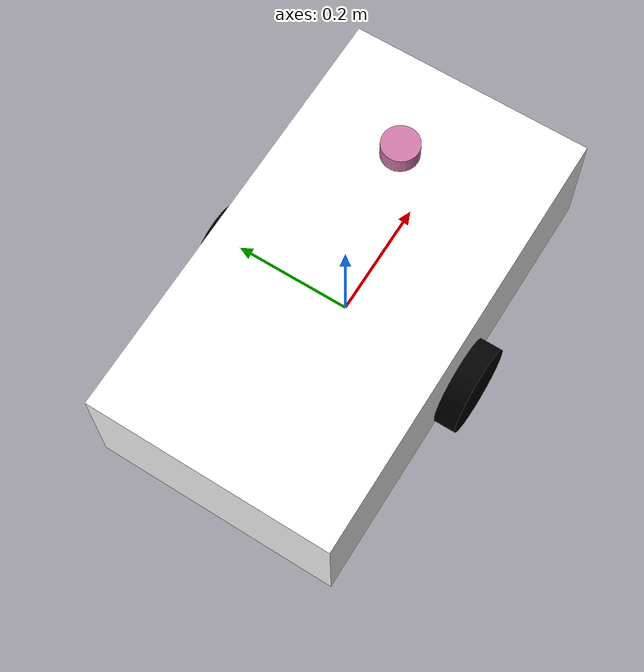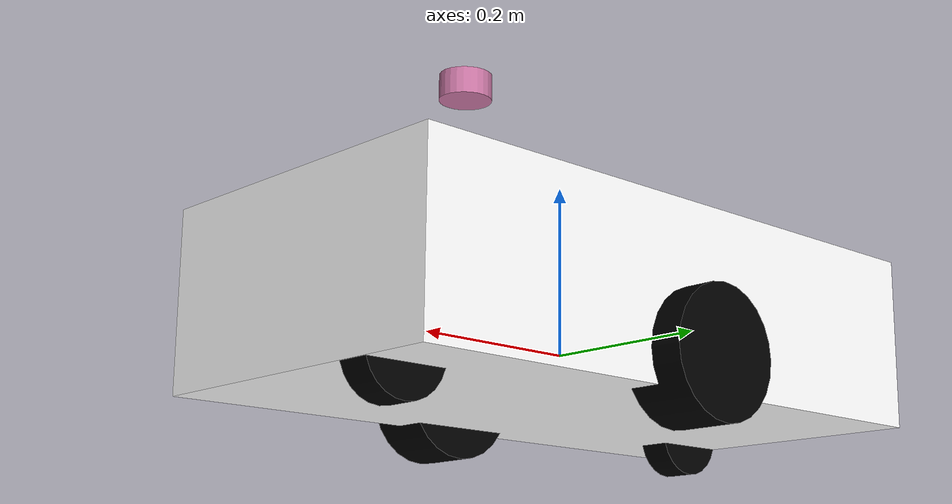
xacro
<?xml version="1.0"?>

<robot xmlns:xacro="http://www.ros.org/wiki/xacro" name="edabot">

    <xacro:arg name="is_sim" default="true"/>

    <!-- include ros2_control -->
    <xacro:include filename="$(find edabot_description)/urdf/edabot.ros2_control.xacro"/>

    <!-- include ros2_control and gazebo -->
    <xacro:include filename="$(find edabot_description)/urdf/edabot.gazebo.xacro"/>

    <!-- some material common properties (color) -->
    <material name="white">
        <color rgba="1 1 1 1"/>
    </material>
    <material name="black">
        <color rgba="0 0 0 1"/>
    </material>

    <!-- robot properties (International System of Units => using meters and kilograms) -->
    <xacro:property name="base_length" value="0.75387"/>
    <xacro:property name="base_width" value="0.4174"/>
    <xacro:property name="base_height" value="0.2078"/>
    <xacro:property name="base_mass" value="20.0"/>

    <xacro:property name="wheel_radius" value="0.075"/>
    <xacro:property name="wheel_thickness" value="0.075"/>
    <xacro:property name="wheel_mass" value="0.23"/>

    <xacro:property name="caster_wheel_radius" value="0.05"/>
    <xacro:property name="caster_wheel_thickness" value="0.04"/>
    <xacro:property name="caster_wheel_mass" value="0.05"/>

    <!-- base link and joint -->
    <link name="base_footprint"/>
    <link name="base_link">
        <inertial>
            <mass value="${base_mass}"/>
            <inertia ixx="${(1/12) * base_mass * ((base_width * base_width) + (base_height * base_height))}"
                     ixy="0.0"
                     ixz="0.0"
                     iyy="${(1/12) * base_mass * ((base_length * base_length) + (base_height * base_height))}"
                     iyz="0.0"
                     izz="${(1/12) * base_mass * ((base_length * base_length) + (base_width * base_width))}"/>
            <origin xyz="0 0 0" rpy="0 0 0"/>
        </inertial>
        <visual>
            <geometry>
                <box size="${base_length} ${base_width} ${base_height}"/>
            </geometry>
            <origin xyz="0 0 0" rpy="0 0 0"/>
            <material name="white"/>
        </visual>
        <collision>
            <geometry>
                <box size="${base_length} ${base_width} ${base_height}"/>
            </geometry>
            <origin xyz="0 0 0" rpy="0 0 0"/>
        </collision>
    </link>

    <joint name="base_joint" type="fixed">
        <parent link="base_footprint"/>
        <child link="base_link"/>
        <origin xyz="0 0 0.0375" rpy="0 0 0"/>
    </joint>

    <!-- right wheel link and joint -->
    <link name="right_wheel_link">
        <inertial>
            <mass value="${wheel_mass}"/>
            <inertia ixx="${(1/12) * wheel_mass * (3 * wheel_radius * wheel_radius + wheel_thickness * wheel_thickness)}"
                     ixy="0.0"
                     ixz="0.0"
                     iyy="${(1/12) * wheel_mass * (3 * wheel_radius * wheel_radius + wheel_thickness * wheel_thickness)}"
                     iyz="0.0"
                     izz="${(1/2) * wheel_mass * (wheel_radius * wheel_radius)}"/>
            <origin xyz="0 0 0" rpy="0 0 0"/>
        </inertial>
        <visual>
            <geometry>
                <cylinder length="${wheel_thickness}" radius="${wheel_radius}"/>
            </geometry>
            <origin xyz="0 0 0" rpy="0 0 0"/>
            <material name="black"/>
        </visual>
        <collision>
            <geometry>
                <cylinder length="${wheel_thickness}" radius="${wheel_radius}"/>
            </geometry>
            <origin xyz="0 0 0" rpy="0 0 0"/>
        </collision>
    </link>

    <joint name="base_to_right_wheel_joint" type="continuous">
        <parent link="base_link"/>
        <child link="right_wheel_link"/>
        <origin xyz="0 ${-(base_width/2)} ${-((base_height/2) - wheel_radius) - 0.0375}" rpy="${pi/2} 0 0"/>
        <axis xyz="0 0 -1"/>
    </joint>

    <!-- left wheel link and joint -->
    <link name="left_wheel_link">
        <inertial>
            <mass value="${wheel_mass}"/>
            <inertia ixx="${(1/12) * wheel_mass * (3 * wheel_radius * wheel_radius + wheel_thickness * wheel_thickness)}"
                     ixy="0.0"
                     ixz="0.0"
                     iyy="${(1/12) * wheel_mass * (3 * wheel_radius * wheel_radius + wheel_thickness * wheel_thickness)}"
                     iyz="0.0"
                     izz="${(1/2) * wheel_mass * (wheel_radius * wheel_radius)}"/>
            <origin xyz="0 0 0" rpy="0 0 0"/>
        </inertial>
        <visual>
            <geometry>
                <cylinder length="${wheel_thickness}" radius="${wheel_radius}"/>
            </geometry>
            <origin xyz="0 0 0" rpy="0 0 0"/>
            <material name="black"/>
        </visual>
        <collision>
            <geometry>
                <cylinder length="${wheel_thickness}" radius="${wheel_radius}"/>
            </geometry>
            <origin xyz="0 0 0" rpy="0 0 0"/>
        </collision>
    </link>

    <joint name="base_to_left_wheel_joint" type="continuous">
        <parent link="base_link"/>
        <child link="left_wheel_link"/>
        <origin xyz="0 ${(base_width/2)} ${-((base_height/2) - wheel_radius) - 0.0375}" rpy="-${pi/2} 0 0"/>
        <axis xyz="0 0 1"/>
    </joint>

    <!-- caster wheel front link and joint -->
    <link name="caster_wheel_front_link">
        <inertial>
            <mass value="${caster_wheel_mass}"/>
            <inertia ixx="${(2/5) * caster_wheel_mass * (caster_wheel_radius * caster_wheel_radius)}"
                     ixy="0.0"
                     ixz="0.0"
                     iyy="${(2/5) * caster_wheel_mass * (caster_wheel_radius * caster_wheel_radius)}"
                     iyz="0.0"
                     izz="${(2/5) * caster_wheel_mass * (caster_wheel_radius * caster_wheel_radius)}"/>
            <origin xyz="0 0 0" rpy="0 0 0"/>
        </inertial>
        <visual>
            <geometry>
                <cylinder length="${caster_wheel_thickness}" radius="${caster_wheel_radius}"/>
            </geometry>
            <origin xyz="0 0 0" rpy="0 0 0"/>
            <material name="black"/>
        </visual>
        <collision>
            <geometry>
                <sphere radius="${caster_wheel_radius}"/>
            </geometry>
            <origin xyz="0 0 0" rpy="0 0 0"/>
        </collision>
    </link>

    <joint name="base_to_caster_wheel_front_joint" type="fixed">
        <parent link="base_link"/>
        <child link="caster_wheel_front_link"/>
        <origin xyz="${(base_length/2) - (caster_wheel_radius)} ${(base_width/4)} ${-((base_height/2) - caster_wheel_radius) - 0.0375}" rpy="${pi/2} 0 0"/>
    </joint>

    <!-- caster wheel rear link and joint -->
    <link name="caster_wheel_rear_link">
        <inertial>
            <mass value="${caster_wheel_mass}"/>
            <inertia ixx="${(2/5) * caster_wheel_mass * (caster_wheel_radius * caster_wheel_radius)}"
                     ixy="0.0"
                     ixz="0.0"
                     iyy="${(2/5) * caster_wheel_mass * (caster_wheel_radius * caster_wheel_radius)}"
                     iyz="0.0"
                     izz="${(2/5) * caster_wheel_mass * (caster_wheel_radius * caster_wheel_radius)}"/>
            <origin xyz="0 0 0" rpy="0 0 0"/>
        </inertial>
        <visual>
            <geometry>
                <cylinder length="${caster_wheel_thickness}" radius="${caster_wheel_radius}"/>
            </geometry>
            <origin xyz="0 0 0" rpy="0 0 0"/>
            <material name="black"/>
        </visual>
        <collision>
            <geometry>
                <sphere radius="${caster_wheel_radius}"/>
            </geometry>
            <origin xyz="0 0 0" rpy="0 0 0"/>
        </collision>
    </link>

    <joint name="base_to_caster_wheel_rear_joint" type="fixed">
        <parent link="base_link"/>
        <child link="caster_wheel_rear_link"/>
        <origin xyz="${-(base_length/2) + (caster_wheel_radius)} ${-(base_width/4)} ${-((base_height/2) - caster_wheel_radius) - 0.0375}" rpy="${pi/2} 0 0"/>
    </joint>

<!-- Link LiDAR -->
<link name="lidar_link">
  <inertial>
    <mass value="0.3"/>
    <origin xyz="0 0 0"/>
    <inertia ixx="1e-4" ixy="0" ixz="0" iyy="1e-4" iyz="0" izz="1e-4"/>
  </inertial>
  <visual>
    <geometry>
        <cylinder radius="0.03" length="0.03"/>
    </geometry>
  </visual>
</link>

<!-- Pasang di atas base, adjust xyz/rpy sesuai dudukan -->
<joint name="lidar_joint" type="fixed">
  <parent link="base_link"/>
  <child link="lidar_link"/>
  <origin xyz="0.15 0 0.25" rpy="0 0 0"/>
</joint>

</robot>
